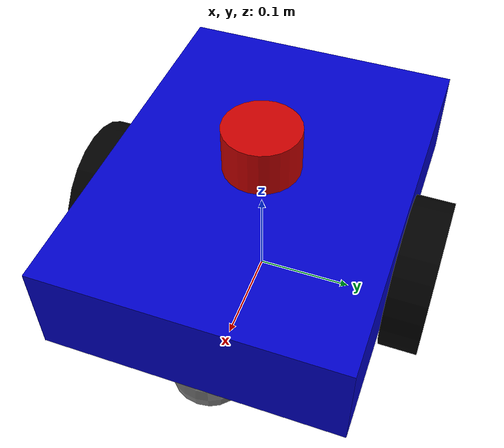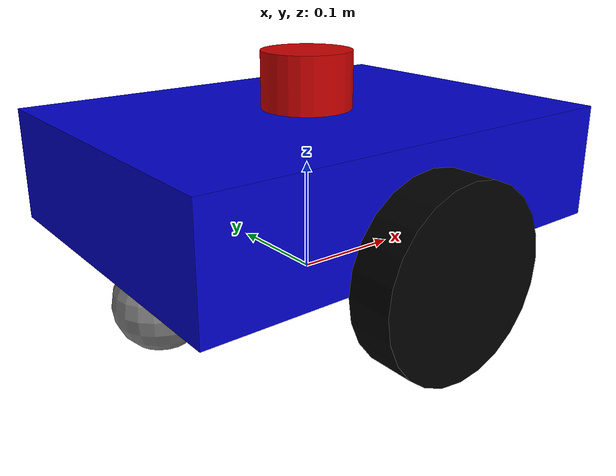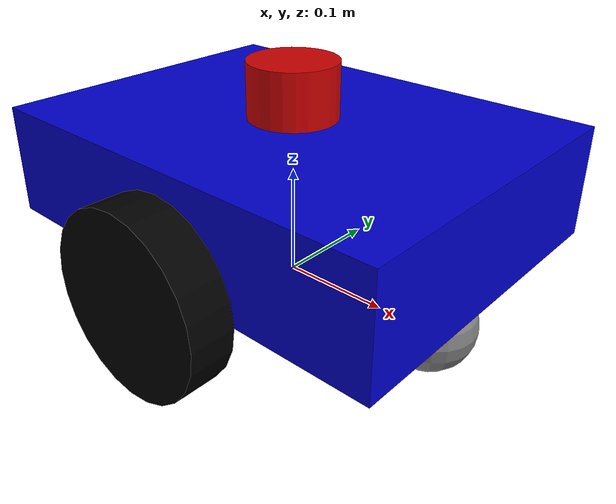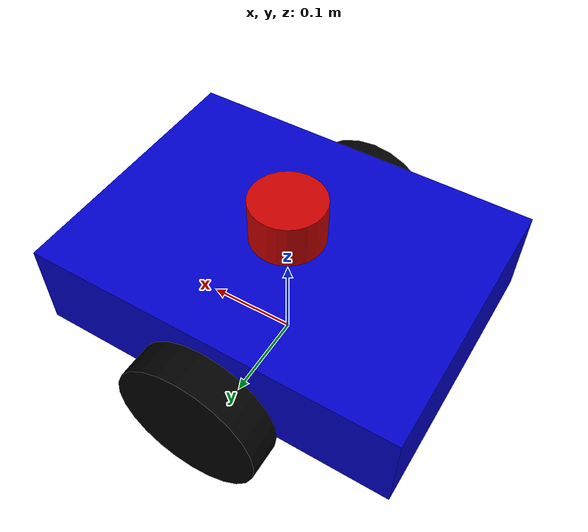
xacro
<?xml version="1.0"?>
<robot name="slam_bot" xmlns:xacro="http://www.ros.org/wiki/xacro">

  <link name="base_footprint"/>

  <joint name="base_joint" type="fixed">
    <parent link="base_footprint"/>
    <child link="base_link"/>
    <origin xyz="0 0 0.1"/>
  </joint>

  <link name="base_link">
    <visual>
      <geometry><box size="0.4 0.3 0.1"/></geometry>
      <material name="blue"><color rgba="0 0 0.8 1"/></material>
    </visual>
    <collision>
      <geometry><box size="0.4 0.3 0.1"/></geometry>
    </collision>
    <inertial>
      <origin xyz="0 0 0"/>
      <mass value="5.0"/>
      <inertia ixx="0.0415" ixy="0" ixz="0" iyy="0.0498" iyz="0" izz="0.0747"/>
    </inertial>
  </link>

  <joint name="left_wheel_joint" type="continuous">
    <parent link="base_link"/>
    <child link="left_wheel"/>
    <origin xyz="0 0.17 -0.05" rpy="-1.5707 0 0"/>
    <axis xyz="0 0 1"/>
  </joint>

  <link name="left_wheel">
    <visual>
      <geometry><cylinder radius="0.08" length="0.04"/></geometry>
      <material name="black"><color rgba="0 0 0 1"/></material>
    </visual>
    <collision>
      <geometry><cylinder radius="0.08" length="0.04"/></geometry>
    </collision>
    <inertial>
      <mass value="0.5"/>
      <inertia ixx="0.00053" ixy="0" ixz="0" iyy="0.00053" iyz="0" izz="0.00080"/>
    </inertial>
  </link>

  <joint name="right_wheel_joint" type="continuous">
    <parent link="base_link"/>
    <child link="right_wheel"/>
    <origin xyz="0 -0.17 -0.05" rpy="-1.5707 0 0"/>
    <axis xyz="0 0 1"/>
  </joint>

  <link name="right_wheel">
    <visual>
      <geometry><cylinder radius="0.08" length="0.04"/></geometry>
      <material name="black"><color rgba="0 0 0 1"/></material>
    </visual>
    <collision>
      <geometry><cylinder radius="0.08" length="0.04"/></geometry>
    </collision>
    <inertial>
      <mass value="0.5"/>
      <inertia ixx="0.00053" ixy="0" ixz="0" iyy="0.00053" iyz="0" izz="0.00080"/>
    </inertial>
  </link>

  <joint name="caster_joint" type="fixed">
    <parent link="base_link"/>
    <child link="caster"/>
    <origin xyz="0.15 0 -0.09"/>
  </joint>

  <link name="caster">
    <visual>
      <geometry><sphere radius="0.04"/></geometry>
      <material name="grey"><color rgba="0.5 0.5 0.5 1"/></material>
    </visual>
    <collision>
      <geometry><sphere radius="0.04"/></geometry>
    </collision>
    <inertial>
      <mass value="0.1"/>
      <inertia ixx="0.000064" ixy="0" ixz="0" iyy="0.000064" iyz="0" izz="0.000064"/>
    </inertial>
  </link>

  <joint name="caster_rear_joint" type="fixed">
    <parent link="base_link"/>
    <child link="caster_rear"/>
    <origin xyz="-0.15 0 -0.09"/>
  </joint>

  <link name="caster_rear">
    <visual>
      <geometry><sphere radius="0.04"/></geometry>
      <material name="grey"><color rgba="0.5 0.5 0.5 1"/></material>
    </visual>
    <collision>
      <geometry><sphere radius="0.04"/></geometry>
    </collision>
    <inertial>
      <mass value="0.1"/>
      <inertia ixx="0.000064" ixy="0" ixz="0" iyy="0.000064" iyz="0" izz="0.000064"/>
    </inertial>
  </link>

  <joint name="lidar_joint" type="fixed">
    <parent link="base_link"/>
    <child link="lidar_link"/>
    <origin xyz="0 0 0.075"/>
  </joint>

  <link name="lidar_link">
    <visual>
      <geometry><cylinder radius="0.04" length="0.05"/></geometry>
      <material name="red"><color rgba="0.8 0 0 1"/></material>
    </visual>
    <inertial>
      <mass value="0.1"/>
      <inertia ixx="0.000064" ixy="0" ixz="0" iyy="0.000064" iyz="0" izz="0.000064"/>
    </inertial>
  </link>

  <joint name="imu_joint" type="fixed">
    <parent link="base_link"/>
    <child link="imu_link"/>
    <origin xyz="0 0 0.05"/>
  </joint>

  <link name="imu_link">
    <inertial>
      <mass value="0.01"/>
      <inertia ixx="0.00001" ixy="0" ixz="0" iyy="0.00001" iyz="0" izz="0.00001"/>
    </inertial>
  </link>

  <gazebo>
    <plugin name="diff_drive" filename="libgazebo_ros_diff_drive.so">
      <left_joint>left_wheel_joint</left_joint>
      <right_joint>right_wheel_joint</right_joint>
      <wheel_separation>0.34</wheel_separation>
      <wheel_diameter>0.16</wheel_diameter>
      <max_wheel_torque>20</max_wheel_torque>
      <max_wheel_acceleration>1.0</max_wheel_acceleration>
      <command_topic>cmd_vel</command_topic>
      <publish_odom>true</publish_odom>
      <publish_odom_tf>true</publish_odom_tf>
      <publish_wheel_tf>false</publish_wheel_tf>
      <odometry_frame>odom</odometry_frame>
      <robot_base_frame>base_footprint</robot_base_frame>
    </plugin>
  </gazebo>

  <gazebo reference="lidar_link">
    <sensor name="lidar" type="ray">
      <always_on>true</always_on>
      <visualize>true</visualize>
      <update_rate>10</update_rate>
      <ray>
        <scan>
          <horizontal>
            <samples>360</samples>
            <resolution>1</resolution>
            <min_angle>-3.14159</min_angle>
            <max_angle>3.14159</max_angle>
          </horizontal>
        </scan>
        <range>
          <min>0.15</min>
          <max>12.0</max>
          <resolution>0.01</resolution>
        </range>
      </ray>
      <plugin name="scan" filename="libgazebo_ros_ray_sensor.so">
        <ros>
          <remapping>~/out:=scan</remapping>
        </ros>
        <output_type>sensor_msgs/LaserScan</output_type>
        <frame_name>lidar_link</frame_name>
      </plugin>
    </sensor>
  </gazebo>

  <gazebo reference="imu_link">
    <sensor name="imu_sensor" type="imu">
      <always_on>true</always_on>
      <update_rate>100</update_rate>
      <plugin name="imu_plugin" filename="libgazebo_ros_imu_sensor.so">
        <ros>
          <remapping>~/out:=imu</remapping>
        </ros>
        <initial_orientation_as_reference>false</initial_orientation_as_reference>
        <frame_name>imu_link</frame_name>
      </plugin>
    </sensor>
  </gazebo>

  <gazebo reference="caster">
    <mu1>0.0</mu1>
    <mu2>0.0</mu2>
  </gazebo>

  <gazebo reference="caster_rear">
    <mu1>0.0</mu1>
    <mu2>0.0</mu2>
  </gazebo>

  <gazebo reference="base_link">
    <material>Gazebo/Blue</material>
  </gazebo>
  <gazebo reference="left_wheel">
    <material>Gazebo/Black</material>
  </gazebo>
  <gazebo reference="right_wheel">
    <material>Gazebo/Black</material>
  </gazebo>
  <gazebo reference="caster">
    <material>Gazebo/Grey</material>
  </gazebo>
  <gazebo reference="caster_rear">
    <material>Gazebo/Grey</material>
  </gazebo>
  <gazebo reference="lidar_link">
    <material>Gazebo/Red</material>
  </gazebo>

</robot>
